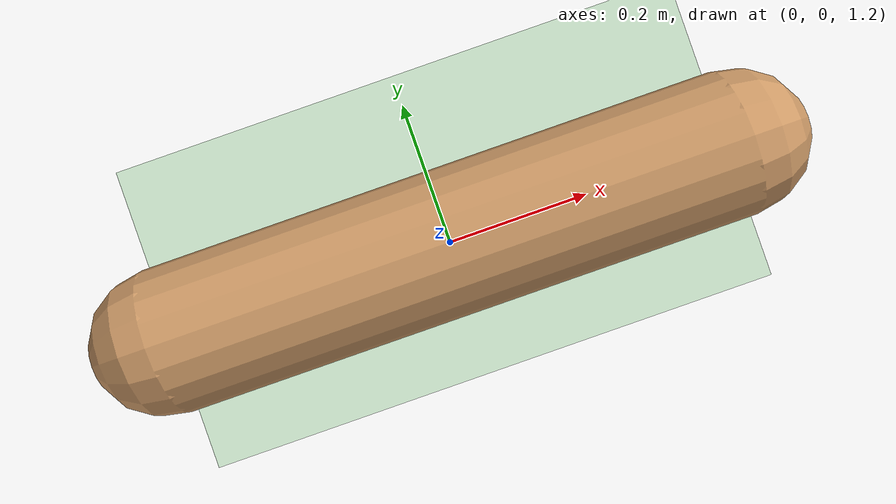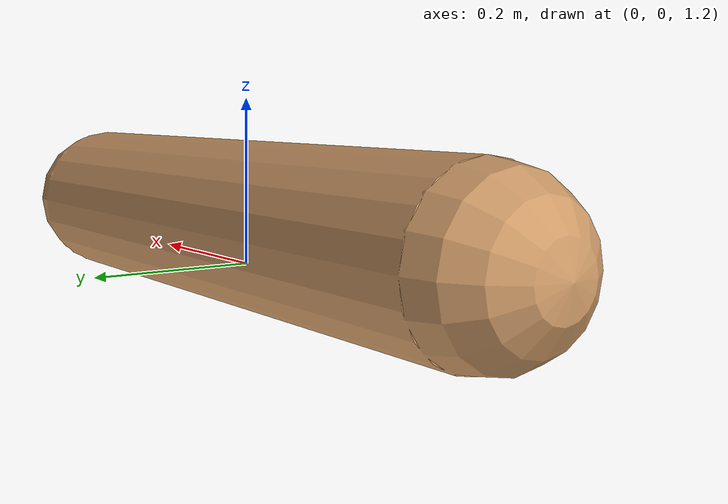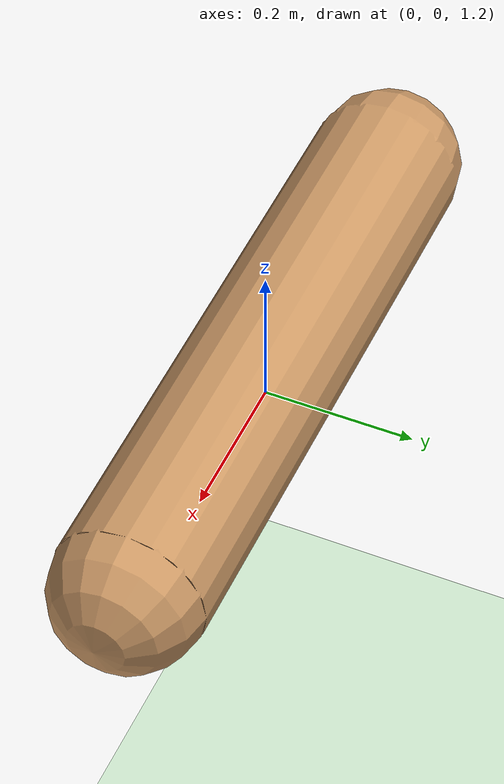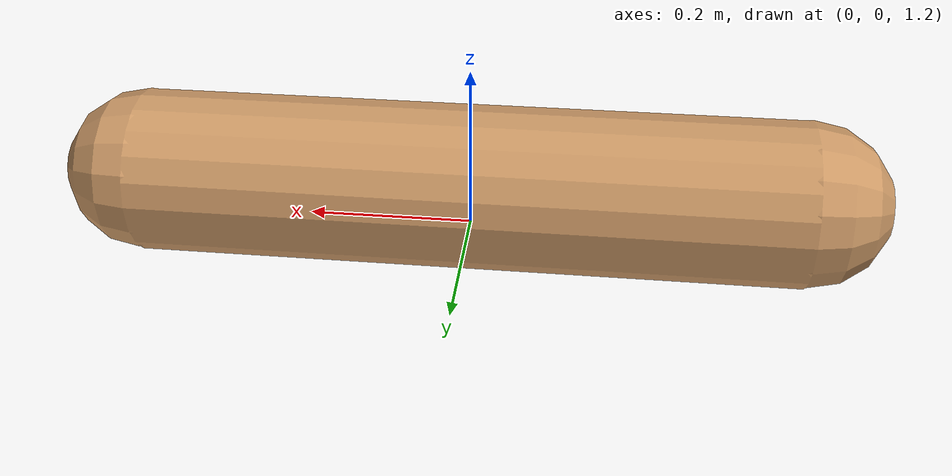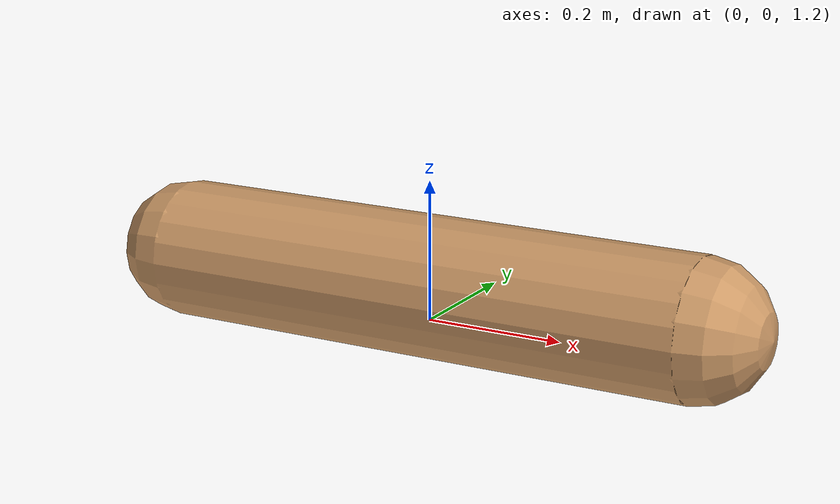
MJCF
<mujoco model="dog">
    <compiler angle="degree" coordinate="local" inertiafromgeom="true"/>
    <option integrator="RK4" timestep="0.01"/>
    <default>
        <joint armature="1" damping="1" limited="true"/>
        <geom conaffinity="0" condim="3" density="5.0" friction="1 0.5 0.5" margin="0.01" rgba="0.8 0.6 0.4 1"/>
    </default>
    <asset>
        <texture builtin="gradient" height="100" rgb1="1 1 1" rgb2="0 0 0" type="skybox" width="100"/>
        <texture builtin="flat" height="1278" mark="cross" markrgb="1 1 1" name="texgeom" random="0.01" rgb1="0.8 0.6 0.4" rgb2="0.8 0.6 0.4" type="cube" width="127"/>
        <texture builtin="checker" height="100" name="texplane" rgb1="0 0 0" rgb2="0.8 0.8 0.8" type="2d" width="100"/>
        <material name="MatPlane" reflectance="0.5" shininess="1" specular="1" texrepeat="60 60" texture="texplane"/>
        <material name="geom" texture="texgeom" texuniform="true"/>
    </asset>
    <worldbody>
        <light cutoff="100" diffuse="1 1 1" dir="-0 0 -1.3" directional="true" exponent="1" pos="0 0 1.3" specular=".1 .1 .1"/>
        <geom conaffinity="1" condim="3" material="MatPlane" name="floor" pos="0 0 0" rgba="0.8 0.9 0.8 1" size="40 40 40" type="plane"/>
        <body name="torso" pos="0 0 1.25" >
            <camera name="track" mode="trackcom" pos="0 -3 0.3" xyaxes="1 0 0 0 0 1"/>
            <geom name="torso_geom" fromto="-0.4 0.0 0.0 0.4 0.0 0.0" pos="0 0 0" size="0.1" type="capsule"/>
            <joint armature="0" damping="0" limited="false" margin="0.01" name="root" pos="0 0 0" type="free"/>
        </body>
    </worldbody>
    <actuator>
    </actuator>
</mujoco>
